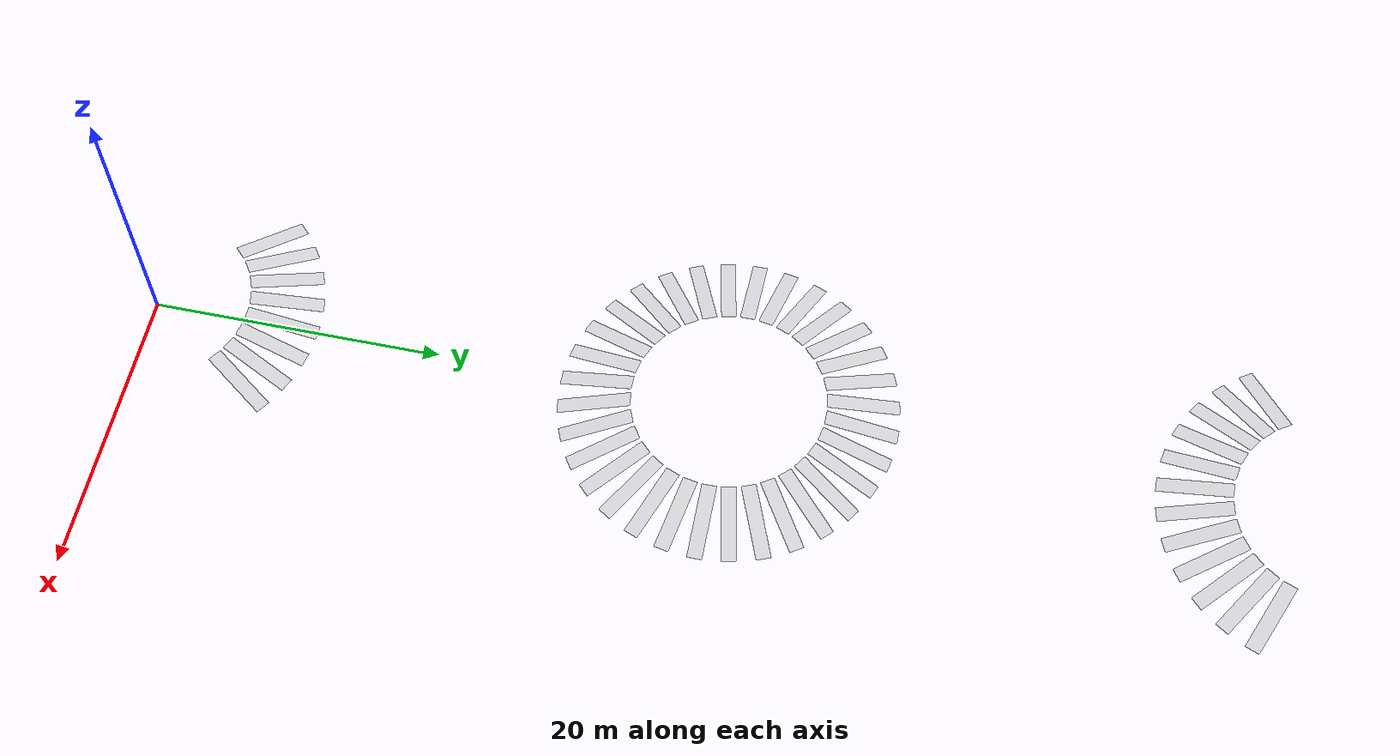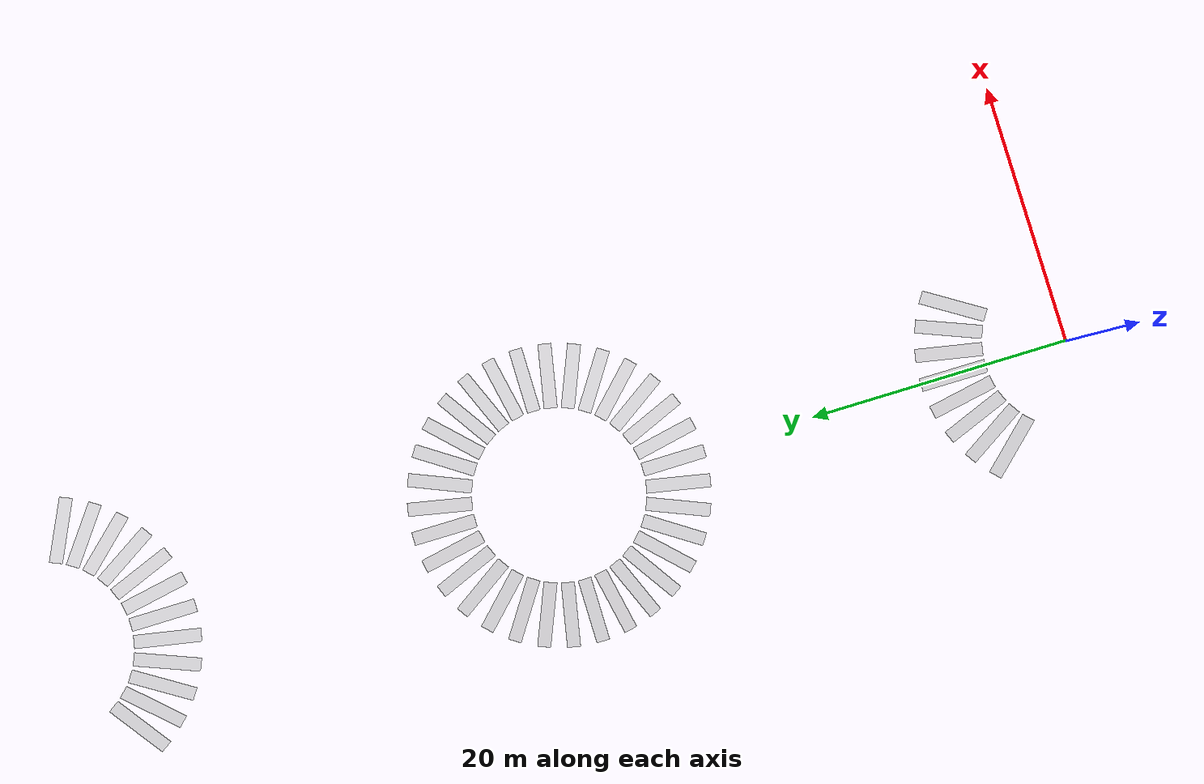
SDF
<sdf version="1.7">
 <world name="friction_pyramid">
  <model name="groundplane">
   <static>1</static>
   <link name="link">
    <collision name="collision">
     <geometry><plane><normal>0 0 1</normal><size>1 1</size></plane></geometry>
    </collision>
   </link>
  </model>
  <model name="boxes_ramp_5">
   <pose relative_to="groundplane">5.0001320971764205 7.483226510722907 0.5 0 0.2 0.9817477042468103</pose>
   <static>1</static>
   <link name="link">
    <collision name="collision">
     <pose relative_to="link">0 0 0 0 0 0</pose>
     <geometry><box><size>5 1 0.02</size></box></geometry>
     <surface>
      <contact><ode><kp>1e+06</kp><kd>1</kd></ode></contact>
      <friction><ode><mu>1</mu><mu2>1</mu2></ode></friction>
     </surface>
    </collision>
    <visual name="visual">
     <geometry><box><size>5 1 0.02</size></box></geometry>
     <material>
      <ambient>.3 .3 .3  0.5</ambient>
      <diffuse>.7 .7 .7  0.5</diffuse>
      <specular>0.01 0.01 0.01 1.000000</specular>
     </material>
    </visual>
    <gravity>0</gravity>
   </link>
  </model>
  <model name="boxes_ramp_6">
   <pose relative_to="groundplane">3.4441508912858083 8.31491579260158 0.5 0 0.2 1.1780972450961724</pose>
   <static>1</static>
   <link name="link">
    <collision name="collision">
     <pose relative_to="link">0 0 0 0 0 0</pose>
     <geometry><box><size>5 1 0.02</size></box></geometry>
     <surface>
      <contact><ode><kp>1e+06</kp><kd>1</kd></ode></contact>
      <friction><ode><mu>1</mu><mu2>1</mu2></ode></friction>
     </surface>
    </collision>
    <visual name="visual">
     <geometry><box><size>5 1 0.02</size></box></geometry>
     <material>
      <ambient>.3 .3 .3  0.5</ambient>
      <diffuse>.7 .7 .7  0.5</diffuse>
      <specular>0.01 0.01 0.01 1.000000</specular>
     </material>
    </visual>
    <gravity>0</gravity>
   </link>
  </model>
  <model name="boxes_ramp_7">
   <pose relative_to="groundplane">1.755812898145155 8.827067523629074 0.5 0 0.2 1.3744467859455345</pose>
   <static>1</static>
   <link name="link">
    <collision name="collision">
     <pose relative_to="link">0 0 0 0 0 0</pose>
     <geometry><box><size>5 1 0.02</size></box></geometry>
     <surface>
      <contact><ode><kp>1e+06</kp><kd>1</kd></ode></contact>
      <friction><ode><mu>1</mu><mu2>1</mu2></ode></friction>
     </surface>
    </collision>
    <visual name="visual">
     <geometry><box><size>5 1 0.02</size></box></geometry>
     <material>
      <ambient>.3 .3 .3  0.5</ambient>
      <diffuse>.7 .7 .7  0.5</diffuse>
      <specular>0.01 0.01 0.01 1.000000</specular>
     </material>
    </visual>
    <gravity>0</gravity>
   </link>
  </model>
  <model name="boxes_ramp_8">
   <pose relative_to="groundplane">5.51091059616309e-16 9.0 0.5 0 0.2 1.5707963267948966</pose>
   <static>1</static>
   <link name="link">
    <collision name="collision">
     <pose relative_to="link">0 0 0 0 0 0</pose>
     <geometry><box><size>5 1 0.02</size></box></geometry>
     <surface>
      <contact><ode><kp>1e+06</kp><kd>1</kd></ode></contact>
      <friction><ode><mu>1</mu><mu2>1</mu2></ode></friction>
     </surface>
    </collision>
    <visual name="visual">
     <geometry><box><size>5 1 0.02</size></box></geometry>
     <material>
      <ambient>.3 .3 .3  0.5</ambient>
      <diffuse>.7 .7 .7  0.5</diffuse>
      <specular>0.01 0.01 0.01 1.000000</specular>
     </material>
    </visual>
    <gravity>0</gravity>
   </link>
  </model>
  <model name="boxes_ramp_9">
   <pose relative_to="groundplane">-1.7558128981451537 8.827067523629074 0.5 0 0.2 1.7671458676442586</pose>
   <static>1</static>
   <link name="link">
    <collision name="collision">
     <pose relative_to="link">0 0 0 0 0 0</pose>
     <geometry><box><size>5 1 0.02</size></box></geometry>
     <surface>
      <contact><ode><kp>1e+06</kp><kd>1</kd></ode></contact>
      <friction><ode><mu>1</mu><mu2>1</mu2></ode></friction>
     </surface>
    </collision>
    <visual name="visual">
     <geometry><box><size>5 1 0.02</size></box></geometry>
     <material>
      <ambient>.3 .3 .3  0.5</ambient>
      <diffuse>.7 .7 .7  0.5</diffuse>
      <specular>0.01 0.01 0.01 1.000000</specular>
     </material>
    </visual>
    <gravity>0</gravity>
   </link>
  </model>
  <model name="boxes_ramp_10">
   <pose relative_to="groundplane">-3.4441508912858074 8.31491579260158 0.5 0 0.2 1.9634954084936207</pose>
   <static>1</static>
   <link name="link">
    <collision name="collision">
     <pose relative_to="link">0 0 0 0 0 0</pose>
     <geometry><box><size>5 1 0.02</size></box></geometry>
     <surface>
      <contact><ode><kp>1e+06</kp><kd>1</kd></ode></contact>
      <friction><ode><mu>1</mu><mu2>1</mu2></ode></friction>
     </surface>
    </collision>
    <visual name="visual">
     <geometry><box><size>5 1 0.02</size></box></geometry>
     <material>
      <ambient>.3 .3 .3  0.5</ambient>
      <diffuse>.7 .7 .7  0.5</diffuse>
      <specular>0.01 0.01 0.01 1.000000</specular>
     </material>
    </visual>
    <gravity>0</gravity>
   </link>
  </model>
  <model name="boxes_ramp_11">
   <pose relative_to="groundplane">-5.000132097176418 7.4832265107229095 0.5 0 0.2 2.1598449493429825</pose>
   <static>1</static>
   <link name="link">
    <collision name="collision">
     <pose relative_to="link">0 0 0 0 0 0</pose>
     <geometry><box><size>5 1 0.02</size></box></geometry>
     <surface>
      <contact><ode><kp>1e+06</kp><kd>1</kd></ode></contact>
      <friction><ode><mu>1</mu><mu2>1</mu2></ode></friction>
     </surface>
    </collision>
    <visual name="visual">
     <geometry><box><size>5 1 0.02</size></box></geometry>
     <material>
      <ambient>.3 .3 .3  0.5</ambient>
      <diffuse>.7 .7 .7  0.5</diffuse>
      <specular>0.01 0.01 0.01 1.000000</specular>
     </material>
    </visual>
    <gravity>0</gravity>
   </link>
  </model>
  <model name="boxes_ramp_12">
   <pose relative_to="groundplane">-6.363961030678928 6.3639610306789285 0.5 0 0.2 2.356194490192345</pose>
   <static>1</static>
   <link name="link">
    <collision name="collision">
     <pose relative_to="link">0 0 0 0 0 0</pose>
     <geometry><box><size>5 1 0.02</size></box></geometry>
     <surface>
      <contact><ode><kp>1e+06</kp><kd>1</kd></ode></contact>
      <friction><ode><mu>1</mu><mu2>1</mu2></ode></friction>
     </surface>
    </collision>
    <visual name="visual">
     <geometry><box><size>5 1 0.02</size></box></geometry>
     <material>
      <ambient>.3 .3 .3  0.5</ambient>
      <diffuse>.7 .7 .7  0.5</diffuse>
      <specular>0.01 0.01 0.01 1.000000</specular>
     </material>
    </visual>
    <gravity>0</gravity>
   </link>
  </model>
  <model name="boxes_mu_ramp_0">
   <pose relative_to="groundplane">9.0 40.0 0.5 0 0.2 0.0</pose>
   <static>1</static>
   <link name="link">
    <collision name="collision">
     <pose relative_to="link">0 0 0 0 0 0</pose>
     <geometry><box><size>5 1 0.02</size></box></geometry>
     <surface>
      <contact><ode><kp>1e+06</kp><kd>1</kd></ode></contact>
      <friction><ode><mu>1</mu><mu2>1</mu2></ode></friction>
     </surface>
    </collision>
    <visual name="visual">
     <geometry><box><size>5 1 0.02</size></box></geometry>
     <material>
      <ambient>.3 .3 .3  0.5</ambient>
      <diffuse>.7 .7 .7  0.5</diffuse>
      <specular>0.01 0.01 0.01 1.000000</specular>
     </material>
    </visual>
    <gravity>0</gravity>
   </link>
  </model>
  <model name="boxes_mu_ramp_1">
   <pose relative_to="groundplane">8.827067523629074 41.75581289814515 0.5 0 0.2 0.19634954084936207</pose>
   <static>1</static>
   <link name="link">
    <collision name="collision">
     <pose relative_to="link">0 0 0 0 0 0</pose>
     <geometry><box><size>5 1 0.02</size></box></geometry>
     <surface>
      <contact><ode><kp>1e+06</kp><kd>1</kd></ode></contact>
      <friction><ode><mu>1</mu><mu2>1</mu2></ode></friction>
     </surface>
    </collision>
    <visual name="visual">
     <geometry><box><size>5 1 0.02</size></box></geometry>
     <material>
      <ambient>.3 .3 .3  0.5</ambient>
      <diffuse>.7 .7 .7  0.5</diffuse>
      <specular>0.01 0.01 0.01 1.000000</specular>
     </material>
    </visual>
    <gravity>0</gravity>
   </link>
  </model>
  <model name="boxes_mu_ramp_2">
   <pose relative_to="groundplane">8.31491579260158 43.44415089128581 0.5 0 0.2 0.39269908169872414</pose>
   <static>1</static>
   <link name="link">
    <collision name="collision">
     <pose relative_to="link">0 0 0 0 0 0</pose>
     <geometry><box><size>5 1 0.02</size></box></geometry>
     <surface>
      <contact><ode><kp>1e+06</kp><kd>1</kd></ode></contact>
      <friction><ode><mu>1</mu><mu2>1</mu2></ode></friction>
     </surface>
    </collision>
    <visual name="visual">
     <geometry><box><size>5 1 0.02</size></box></geometry>
     <material>
      <ambient>.3 .3 .3  0.5</ambient>
      <diffuse>.7 .7 .7  0.5</diffuse>
      <specular>0.01 0.01 0.01 1.000000</specular>
     </material>
    </visual>
    <gravity>0</gravity>
   </link>
  </model>
  <model name="boxes_mu_ramp_3">
   <pose relative_to="groundplane">7.483226510722907 45.00013209717642 0.5 0 0.2 0.5890486225480862</pose>
   <static>1</static>
   <link name="link">
    <collision name="collision">
     <pose relative_to="link">0 0 0 0 0 0</pose>
     <geometry><box><size>5 1 0.02</size></box></geometry>
     <surface>
      <contact><ode><kp>1e+06</kp><kd>1</kd></ode></contact>
      <friction><ode><mu>1</mu><mu2>1</mu2></ode></friction>
     </surface>
    </collision>
    <visual name="visual">
     <geometry><box><size>5 1 0.02</size></box></geometry>
     <material>
      <ambient>.3 .3 .3  0.5</ambient>
      <diffuse>.7 .7 .7  0.5</diffuse>
      <specular>0.01 0.01 0.01 1.000000</specular>
     </material>
    </visual>
    <gravity>0</gravity>
   </link>
  </model>
  <model name="boxes_mu_ramp_4">
   <pose relative_to="groundplane">6.3639610306789285 46.36396103067893 0.5 0 0.2 0.7853981633974483</pose>
   <static>1</static>
   <link name="link">
    <collision name="collision">
     <pose relative_to="link">0 0 0 0 0 0</pose>
     <geometry><box><size>5 1 0.02</size></box></geometry>
     <surface>
      <contact><ode><kp>1e+06</kp><kd>1</kd></ode></contact>
      <friction><ode><mu>1</mu><mu2>1</mu2></ode></friction>
     </surface>
    </collision>
    <visual name="visual">
     <geometry><box><size>5 1 0.02</size></box></geometry>
     <material>
      <ambient>.3 .3 .3  0.5</ambient>
      <diffuse>.7 .7 .7  0.5</diffuse>
      <specular>0.01 0.01 0.01 1.000000</specular>
     </material>
    </visual>
    <gravity>0</gravity>
   </link>
  </model>
  <model name="boxes_mu_ramp_5">
   <pose relative_to="groundplane">5.0001320971764205 47.48322651072291 0.5 0 0.2 0.9817477042468103</pose>
   <static>1</static>
   <link name="link">
    <collision name="collision">
     <pose relative_to="link">0 0 0 0 0 0</pose>
     <geometry><box><size>5 1 0.02</size></box></geometry>
     <surface>
      <contact><ode><kp>1e+06</kp><kd>1</kd></ode></contact>
      <friction><ode><mu>1</mu><mu2>1</mu2></ode></friction>
     </surface>
    </collision>
    <visual name="visual">
     <geometry><box><size>5 1 0.02</size></box></geometry>
     <material>
      <ambient>.3 .3 .3  0.5</ambient>
      <diffuse>.7 .7 .7  0.5</diffuse>
      <specular>0.01 0.01 0.01 1.000000</specular>
     </material>
    </visual>
    <gravity>0</gravity>
   </link>
  </model>
  <model name="boxes_mu_ramp_6">
   <pose relative_to="groundplane">3.4441508912858083 48.31491579260158 0.5 0 0.2 1.1780972450961724</pose>
   <static>1</static>
   <link name="link">
    <collision name="collision">
     <pose relative_to="link">0 0 0 0 0 0</pose>
     <geometry><box><size>5 1 0.02</size></box></geometry>
     <surface>
      <contact><ode><kp>1e+06</kp><kd>1</kd></ode></contact>
      <friction><ode><mu>1</mu><mu2>1</mu2></ode></friction>
     </surface>
    </collision>
    <visual name="visual">
     <geometry><box><size>5 1 0.02</size></box></geometry>
     <material>
      <ambient>.3 .3 .3  0.5</ambient>
      <diffuse>.7 .7 .7  0.5</diffuse>
      <specular>0.01 0.01 0.01 1.000000</specular>
     </material>
    </visual>
    <gravity>0</gravity>
   </link>
  </model>
  <model name="boxes_mu_ramp_7">
   <pose relative_to="groundplane">1.755812898145155 48.827067523629076 0.5 0 0.2 1.3744467859455345</pose>
   <static>1</static>
   <link name="link">
    <collision name="collision">
     <pose relative_to="link">0 0 0 0 0 0</pose>
     <geometry><box><size>5 1 0.02</size></box></geometry>
     <surface>
      <contact><ode><kp>1e+06</kp><kd>1</kd></ode></contact>
      <friction><ode><mu>1</mu><mu2>1</mu2></ode></friction>
     </surface>
    </collision>
    <visual name="visual">
     <geometry><box><size>5 1 0.02</size></box></geometry>
     <material>
      <ambient>.3 .3 .3  0.5</ambient>
      <diffuse>.7 .7 .7  0.5</diffuse>
      <specular>0.01 0.01 0.01 1.000000</specular>
     </material>
    </visual>
    <gravity>0</gravity>
   </link>
  </model>
  <model name="boxes_mu_ramp_8">
   <pose relative_to="groundplane">5.51091059616309e-16 49.0 0.5 0 0.2 1.5707963267948966</pose>
   <static>1</static>
   <link name="link">
    <collision name="collision">
     <pose relative_to="link">0 0 0 0 0 0</pose>
     <geometry><box><size>5 1 0.02</size></box></geometry>
     <surface>
      <contact><ode><kp>1e+06</kp><kd>1</kd></ode></contact>
      <friction><ode><mu>1</mu><mu2>1</mu2></ode></friction>
     </surface>
    </collision>
    <visual name="visual">
     <geometry><box><size>5 1 0.02</size></box></geometry>
     <material>
      <ambient>.3 .3 .3  0.5</ambient>
      <diffuse>.7 .7 .7  0.5</diffuse>
      <specular>0.01 0.01 0.01 1.000000</specular>
     </material>
    </visual>
    <gravity>0</gravity>
   </link>
  </model>
  <model name="boxes_mu_ramp_9">
   <pose relative_to="groundplane">-1.7558128981451537 48.827067523629076 0.5 0 0.2 1.7671458676442586</pose>
   <static>1</static>
   <link name="link">
    <collision name="collision">
     <pose relative_to="link">0 0 0 0 0 0</pose>
     <geometry><box><size>5 1 0.02</size></box></geometry>
     <surface>
      <contact><ode><kp>1e+06</kp><kd>1</kd></ode></contact>
      <friction><ode><mu>1</mu><mu2>1</mu2></ode></friction>
     </surface>
    </collision>
    <visual name="visual">
     <geometry><box><size>5 1 0.02</size></box></geometry>
     <material>
      <ambient>.3 .3 .3  0.5</ambient>
      <diffuse>.7 .7 .7  0.5</diffuse>
      <specular>0.01 0.01 0.01 1.000000</specular>
     </material>
    </visual>
    <gravity>0</gravity>
   </link>
  </model>
  <model name="boxes_mu_ramp_10">
   <pose relative_to="groundplane">-3.4441508912858074 48.31491579260158 0.5 0 0.2 1.9634954084936207</pose>
   <static>1</static>
   <link name="link">
    <collision name="collision">
     <pose relative_to="link">0 0 0 0 0 0</pose>
     <geometry><box><size>5 1 0.02</size></box></geometry>
     <surface>
      <contact><ode><kp>1e+06</kp><kd>1</kd></ode></contact>
      <friction><ode><mu>1</mu><mu2>1</mu2></ode></friction>
     </surface>
    </collision>
    <visual name="visual">
     <geometry><box><size>5 1 0.02</size></box></geometry>
     <material>
      <ambient>.3 .3 .3  0.5</ambient>
      <diffuse>.7 .7 .7  0.5</diffuse>
      <specular>0.01 0.01 0.01 1.000000</specular>
     </material>
    </visual>
    <gravity>0</gravity>
   </link>
  </model>
  <model name="boxes_mu_ramp_11">
   <pose relative_to="groundplane">-5.000132097176418 47.48322651072291 0.5 0 0.2 2.1598449493429825</pose>
   <static>1</static>
   <link name="link">
    <collision name="collision">
     <pose relative_to="link">0 0 0 0 0 0</pose>
     <geometry><box><size>5 1 0.02</size></box></geometry>
     <surface>
      <contact><ode><kp>1e+06</kp><kd>1</kd></ode></contact>
      <friction><ode><mu>1</mu><mu2>1</mu2></ode></friction>
     </surface>
    </collision>
    <visual name="visual">
     <geometry><box><size>5 1 0.02</size></box></geometry>
     <material>
      <ambient>.3 .3 .3  0.5</ambient>
      <diffuse>.7 .7 .7  0.5</diffuse>
      <specular>0.01 0.01 0.01 1.000000</specular>
     </material>
    </visual>
    <gravity>0</gravity>
   </link>
  </model>
  <model name="boxes_mu_ramp_12">
   <pose relative_to="groundplane">-6.363961030678928 46.36396103067893 0.5 0 0.2 2.356194490192345</pose>
   <static>1</static>
   <link name="link">
    <collision name="collision">
     <pose relative_to="link">0 0 0 0 0 0</pose>
     <geometry><box><size>5 1 0.02</size></box></geometry>
     <surface>
      <contact><ode><kp>1e+06</kp><kd>1</kd></ode></contact>
      <friction><ode><mu>1</mu><mu2>1</mu2></ode></friction>
     </surface>
    </collision>
    <visual name="visual">
     <geometry><box><size>5 1 0.02</size></box></geometry>
     <material>
      <ambient>.3 .3 .3  0.5</ambient>
      <diffuse>.7 .7 .7  0.5</diffuse>
      <specular>0.01 0.01 0.01 1.000000</specular>
     </material>
    </visual>
    <gravity>0</gravity>
   </link>
  </model>
  <model name="boxes_mu_ramp_13">
   <pose relative_to="groundplane">-7.483226510722908 45.00013209717642 0.5 0 0.2 2.552544031041707</pose>
   <static>1</static>
   <link name="link">
    <collision name="collision">
     <pose relative_to="link">0 0 0 0 0 0</pose>
     <geometry><box><size>5 1 0.02</size></box></geometry>
     <surface>
      <contact><ode><kp>1e+06</kp><kd>1</kd></ode></contact>
      <friction><ode><mu>1</mu><mu2>1</mu2></ode></friction>
     </surface>
    </collision>
    <visual name="visual">
     <geometry><box><size>5 1 0.02</size></box></geometry>
     <material>
      <ambient>.3 .3 .3  0.5</ambient>
      <diffuse>.7 .7 .7  0.5</diffuse>
      <specular>0.01 0.01 0.01 1.000000</specular>
     </material>
    </visual>
    <gravity>0</gravity>
   </link>
  </model>
  <model name="boxes_mu_ramp_14">
   <pose relative_to="groundplane">-8.31491579260158 43.44415089128581 0.5 0 0.2 2.748893571891069</pose>
   <static>1</static>
   <link name="link">
    <collision name="collision">
     <pose relative_to="link">0 0 0 0 0 0</pose>
     <geometry><box><size>5 1 0.02</size></box></geometry>
     <surface>
      <contact><ode><kp>1e+06</kp><kd>1</kd></ode></contact>
      <friction><ode><mu>1</mu><mu2>1</mu2></ode></friction>
     </surface>
    </collision>
    <visual name="visual">
     <geometry><box><size>5 1 0.02</size></box></geometry>
     <material>
      <ambient>.3 .3 .3  0.5</ambient>
      <diffuse>.7 .7 .7  0.5</diffuse>
      <specular>0.01 0.01 0.01 1.000000</specular>
     </material>
    </visual>
    <gravity>0</gravity>
   </link>
  </model>
  <model name="boxes_mu_ramp_15">
   <pose relative_to="groundplane">-8.827067523629074 41.75581289814516 0.5 0 0.2 2.945243112740431</pose>
   <static>1</static>
   <link name="link">
    <collision name="collision">
     <pose relative_to="link">0 0 0 0 0 0</pose>
     <geometry><box><size>5 1 0.02</size></box></geometry>
     <surface>
      <contact><ode><kp>1e+06</kp><kd>1</kd></ode></contact>
      <friction><ode><mu>1</mu><mu2>1</mu2></ode></friction>
     </surface>
    </collision>
    <visual name="visual">
     <geometry><box><size>5 1 0.02</size></box></geometry>
     <material>
      <ambient>.3 .3 .3  0.5</ambient>
      <diffuse>.7 .7 .7  0.5</diffuse>
      <specular>0.01 0.01 0.01 1.000000</specular>
     </material>
    </visual>
    <gravity>0</gravity>
   </link>
  </model>
  <model name="boxes_mu_ramp_16">
   <pose relative_to="groundplane">-9.0 40.0 0.5 0 0.2 3.141592653589793</pose>
   <static>1</static>
   <link name="link">
    <collision name="collision">
     <pose relative_to="link">0 0 0 0 0 0</pose>
     <geometry><box><size>5 1 0.02</size></box></geometry>
     <surface>
      <contact><ode><kp>1e+06</kp><kd>1</kd></ode></contact>
      <friction><ode><mu>1</mu><mu2>1</mu2></ode></friction>
     </surface>
    </collision>
    <visual name="visual">
     <geometry><box><size>5 1 0.02</size></box></geometry>
     <material>
      <ambient>.3 .3 .3  0.5</ambient>
      <diffuse>.7 .7 .7  0.5</diffuse>
      <specular>0.01 0.01 0.01 1.000000</specular>
     </material>
    </visual>
    <gravity>0</gravity>
   </link>
  </model>
  <model name="boxes_mu_ramp_17">
   <pose relative_to="groundplane">-8.827067523629074 38.24418710185485 0.5 0 0.2 3.3379421944391554</pose>
   <static>1</static>
   <link name="link">
    <collision name="collision">
     <pose relative_to="link">0 0 0 0 0 0</pose>
     <geometry><box><size>5 1 0.02</size></box></geometry>
     <surface>
      <contact><ode><kp>1e+06</kp><kd>1</kd></ode></contact>
      <friction><ode><mu>1</mu><mu2>1</mu2></ode></friction>
     </surface>
    </collision>
    <visual name="visual">
     <geometry><box><size>5 1 0.02</size></box></geometry>
     <material>
      <ambient>.3 .3 .3  0.5</ambient>
      <diffuse>.7 .7 .7  0.5</diffuse>
      <specular>0.01 0.01 0.01 1.000000</specular>
     </material>
    </visual>
    <gravity>0</gravity>
   </link>
  </model>
  <model name="boxes_mu_ramp_18">
   <pose relative_to="groundplane">-8.314915792601582 36.55584910871419 0.5 0 0.2 3.5342917352885173</pose>
   <static>1</static>
   <link name="link">
    <collision name="collision">
     <pose relative_to="link">0 0 0 0 0 0</pose>
     <geometry><box><size>5 1 0.02</size></box></geometry>
     <surface>
      <contact><ode><kp>1e+06</kp><kd>1</kd></ode></contact>
      <friction><ode><mu>1</mu><mu2>1</mu2></ode></friction>
     </surface>
    </collision>
    <visual name="visual">
     <geometry><box><size>5 1 0.02</size></box></geometry>
     <material>
      <ambient>.3 .3 .3  0.5</ambient>
      <diffuse>.7 .7 .7  0.5</diffuse>
      <specular>0.01 0.01 0.01 1.000000</specular>
     </material>
    </visual>
    <gravity>0</gravity>
   </link>
  </model>
  <model name="boxes_mu_ramp_19">
   <pose relative_to="groundplane">-7.4832265107229095 34.99986790282358 0.5 0 0.2 3.730641276137879</pose>
   <static>1</static>
   <link name="link">
    <collision name="collision">
     <pose relative_to="link">0 0 0 0 0 0</pose>
     <geometry><box><size>5 1 0.02</size></box></geometry>
     <surface>
      <contact><ode><kp>1e+06</kp><kd>1</kd></ode></contact>
      <friction><ode><mu>1</mu><mu2>1</mu2></ode></friction>
     </surface>
    </collision>
    <visual name="visual">
     <geometry><box><size>5 1 0.02</size></box></geometry>
     <material>
      <ambient>.3 .3 .3  0.5</ambient>
      <diffuse>.7 .7 .7  0.5</diffuse>
      <specular>0.01 0.01 0.01 1.000000</specular>
     </material>
    </visual>
    <gravity>0</gravity>
   </link>
  </model>
  <model name="boxes_mu_ramp_20">
   <pose relative_to="groundplane">-6.363961030678929 33.63603896932107 0.5 0 0.2 3.9269908169872414</pose>
   <static>1</static>
   <link name="link">
    <collision name="collision">
     <pose relative_to="link">0 0 0 0 0 0</pose>
     <geometry><box><size>5 1 0.02</size></box></geometry>
     <surface>
      <contact><ode><kp>1e+06</kp><kd>1</kd></ode></contact>
      <friction><ode><mu>1</mu><mu2>1</mu2></ode></friction>
     </surface>
    </collision>
    <visual name="visual">
     <geometry><box><size>5 1 0.02</size></box></geometry>
     <material>
      <ambient>.3 .3 .3  0.5</ambient>
      <diffuse>.7 .7 .7  0.5</diffuse>
      <specular>0.01 0.01 0.01 1.000000</specular>
     </material>
    </visual>
    <gravity>0</gravity>
   </link>
  </model>
  <model name="boxes_mu_ramp_21">
   <pose relative_to="groundplane">-5.00013209717642 32.51677348927709 0.5 0 0.2 4.123340357836604</pose>
   <static>1</static>
   <link name="link">
    <collision name="collision">
     <pose relative_to="link">0 0 0 0 0 0</pose>
     <geometry><box><size>5 1 0.02</size></box></geometry>
     <surface>
      <contact><ode><kp>1e+06</kp><kd>1</kd></ode></contact>
      <friction><ode><mu>1</mu><mu2>1</mu2></ode></friction>
     </surface>
    </collision>
    <visual name="visual">
     <geometry><box><size>5 1 0.02</size></box></geometry>
     <material>
      <ambient>.3 .3 .3  0.5</ambient>
      <diffuse>.7 .7 .7  0.5</diffuse>
      <specular>0.01 0.01 0.01 1.000000</specular>
     </material>
    </visual>
    <gravity>0</gravity>
   </link>
  </model>
  <model name="boxes_mu_ramp_22">
   <pose relative_to="groundplane">-3.444150891285813 31.685084207398422 0.5 0 0.2 4.319689898685965</pose>
   <static>1</static>
   <link name="link">
    <collision name="collision">
     <pose relative_to="link">0 0 0 0 0 0</pose>
     <geometry><box><size>5 1 0.02</size></box></geometry>
     <surface>
      <contact><ode><kp>1e+06</kp><kd>1</kd></ode></contact>
      <friction><ode><mu>1</mu><mu2>1</mu2></ode></friction>
     </surface>
    </collision>
    <visual name="visual">
     <geometry><box><size>5 1 0.02</size></box></geometry>
     <material>
      <ambient>.3 .3 .3  0.5</ambient>
      <diffuse>.7 .7 .7  0.5</diffuse>
      <specular>0.01 0.01 0.01 1.000000</specular>
     </material>
    </visual>
    <gravity>0</gravity>
   </link>
  </model>
  <model name="boxes_mu_ramp_23">
   <pose relative_to="groundplane">-1.755812898145158 31.172932476370928 0.5 0 0.2 4.516039439535327</pose>
   <static>1</static>
   <link name="link">
    <collision name="collision">
     <pose relative_to="link">0 0 0 0 0 0</pose>
     <geometry><box><size>5 1 0.02</size></box></geometry>
     <surface>
      <contact><ode><kp>1e+06</kp><kd>1</kd></ode></contact>
      <friction><ode><mu>1</mu><mu2>1</mu2></ode></friction>
     </surface>
    </collision>
    <visual name="visual">
     <geometry><box><size>5 1 0.02</size></box></geometry>
     <material>
      <ambient>.3 .3 .3  0.5</ambient>
      <diffuse>.7 .7 .7  0.5</diffuse>
      <specular>0.01 0.01 0.01 1.000000</specular>
     </material>
    </visual>
    <gravity>0</gravity>
   </link>
  </model>
  <model name="boxes_mu_ramp_24">
   <pose relative_to="groundplane">-1.6532731788489267e-15 31.0 0.5 0 0.2 4.71238898038469</pose>
   <static>1</static>
   <link name="link">
    <collision name="collision">
     <pose relative_to="link">0 0 0 0 0 0</pose>
     <geometry><box><size>5 1 0.02</size></box></geometry>
     <surface>
      <contact><ode><kp>1e+06</kp><kd>1</kd></ode></contact>
      <friction><ode><mu>1</mu><mu2>1</mu2></ode></friction>
     </surface>
    </collision>
    <visual name="visual">
     <geometry><box><size>5 1 0.02</size></box></geometry>
     <material>
      <ambient>.3 .3 .3  0.5</ambient>
      <diffuse>.7 .7 .7  0.5</diffuse>
      <specular>0.01 0.01 0.01 1.000000</specular>
     </material>
    </visual>
    <gravity>0</gravity>
   </link>
  </model>
  <model name="boxes_mu_ramp_25">
   <pose relative_to="groundplane">1.7558128981451548 31.172932476370924 0.5 0 0.2 4.908738521234052</pose>
   <static>1</static>
   <link name="link">
    <collision name="collision">
     <pose relative_to="link">0 0 0 0 0 0</pose>
     <geometry><box><size>5 1 0.02</size></box></geometry>
     <surface>
      <contact><ode><kp>1e+06</kp><kd>1</kd></ode></contact>
      <friction><ode><mu>1</mu><mu2>1</mu2></ode></friction>
     </surface>
    </collision>
    <visual name="visual">
     <geometry><box><size>5 1 0.02</size></box></geometry>
     <material>
      <ambient>.3 .3 .3  0.5</ambient>
      <diffuse>.7 .7 .7  0.5</diffuse>
      <specular>0.01 0.01 0.01 1.000000</specular>
     </material>
    </visual>
    <gravity>0</gravity>
   </link>
  </model>
  <model name="boxes_mu_ramp_26">
   <pose relative_to="groundplane">3.44415089128581 31.68508420739842 0.5 0 0.2 5.105088062083414</pose>
   <static>1</static>
   <link name="link">
    <collision name="collision">
     <pose relative_to="link">0 0 0 0 0 0</pose>
     <geometry><box><size>5 1 0.02</size></box></geometry>
     <surface>
      <contact><ode><kp>1e+06</kp><kd>1</kd></ode></contact>
      <friction><ode><mu>1</mu><mu2>1</mu2></ode></friction>
     </surface>
    </collision>
    <visual name="visual">
     <geometry><box><size>5 1 0.02</size></box></geometry>
     <material>
      <ambient>.3 .3 .3  0.5</ambient>
      <diffuse>.7 .7 .7  0.5</diffuse>
      <specular>0.01 0.01 0.01 1.000000</specular>
     </material>
    </visual>
    <gravity>0</gravity>
   </link>
  </model>
  <model name="boxes_mu_ramp_27">
   <pose relative_to="groundplane">5.000132097176417 32.51677348927709 0.5 0 0.2 5.301437602932776</pose>
   <static>1</static>
   <link name="link">
    <collision name="collision">
     <pose relative_to="link">0 0 0 0 0 0</pose>
     <geometry><box><size>5 1 0.02</size></box></geometry>
     <surface>
      <contact><ode><kp>1e+06</kp><kd>1</kd></ode></contact>
      <friction><ode><mu>1</mu><mu2>1</mu2></ode></friction>
     </surface>
    </collision>
    <visual name="visual">
     <geometry><box><size>5 1 0.02</size></box></geometry>
     <material>
      <ambient>.3 .3 .3  0.5</ambient>
      <diffuse>.7 .7 .7  0.5</diffuse>
      <specular>0.01 0.01 0.01 1.000000</specular>
     </material>
    </visual>
    <gravity>0</gravity>
   </link>
  </model>
  <model name="boxes_mu_ramp_28">
   <pose relative_to="groundplane">6.363961030678926 33.63603896932107 0.5 0 0.2 5.497787143782138</pose>
   <static>1</static>
   <link name="link">
    <collision name="collision">
     <pose relative_to="link">0 0 0 0 0 0</pose>
     <geometry><box><size>5 1 0.02</size></box></geometry>
     <surface>
      <contact><ode><kp>1e+06</kp><kd>1</kd></ode></contact>
      <friction><ode><mu>1</mu><mu2>1</mu2></ode></friction>
     </surface>
    </collision>
    <visual name="visual">
     <geometry><box><size>5 1 0.02</size></box></geometry>
     <material>
      <ambient>.3 .3 .3  0.5</ambient>
      <diffuse>.7 .7 .7  0.5</diffuse>
      <specular>0.01 0.01 0.01 1.000000</specular>
     </material>
    </visual>
    <gravity>0</gravity>
   </link>
  </model>
  <model name="boxes_mu_ramp_29">
   <pose relative_to="groundplane">7.483226510722907 34.99986790282358 0.5 0 0.2 5.6941366846315</pose>
   <static>1</static>
   <link name="link">
    <collision name="collision">
     <pose relative_to="link">0 0 0 0 0 0</pose>
     <geometry><box><size>5 1 0.02</size></box></geometry>
     <surface>
      <contact><ode><kp>1e+06</kp><kd>1</kd></ode></contact>
      <friction><ode><mu>1</mu><mu2>1</mu2></ode></friction>
     </surface>
    </collision>
    <visual name="visual">
     <geometry><box><size>5 1 0.02</size></box></geometry>
     <material>
      <ambient>.3 .3 .3  0.5</ambient>
      <diffuse>.7 .7 .7  0.5</diffuse>
      <specular>0.01 0.01 0.01 1.000000</specular>
     </material>
    </visual>
    <gravity>0</gravity>
   </link>
  </model>
  <model name="boxes_mu_ramp_30">
   <pose relative_to="groundplane">8.314915792601578 36.555849108714185 0.5 0 0.2 5.890486225480862</pose>
   <static>1</static>
   <link name="link">
    <collision name="collision">
     <pose relative_to="link">0 0 0 0 0 0</pose>
     <geometry><box><size>5 1 0.02</size></box></geometry>
     <surface>
      <contact><ode><kp>1e+06</kp><kd>1</kd></ode></contact>
      <friction><ode><mu>1</mu><mu2>1</mu2></ode></friction>
     </surface>
    </collision>
    <visual name="visual">
     <geometry><box><size>5 1 0.02</size></box></geometry>
     <material>
      <ambient>.3 .3 .3  0.5</ambient>
      <diffuse>.7 .7 .7  0.5</diffuse>
      <specular>0.01 0.01 0.01 1.000000</specular>
     </material>
    </visual>
    <gravity>0</gravity>
   </link>
  </model>
  <model name="boxes_mu_ramp_31">
   <pose relative_to="groundplane">8.827067523629072 38.24418710185484 0.5 0 0.2 6.086835766330224</pose>
   <static>1</static>
   <link name="link">
    <collision name="collision">
     <pose relative_to="link">0 0 0 0 0 0</pose>
     <geometry><box><size>5 1 0.02</size></box></geometry>
     <surface>
      <contact><ode><kp>1e+06</kp><kd>1</kd></ode></contact>
      <friction><ode><mu>1</mu><mu2>1</mu2></ode></friction>
     </surface>
    </collision>
    <visual name="visual">
     <geometry><box><size>5 1 0.02</size></box></geometry>
     <material>
      <ambient>.3 .3 .3  0.5</ambient>
      <diffuse>.7 .7 .7  0.5</diffuse>
      <specular>0.01 0.01 0.01 1.000000</specular>
     </material>
    </visual>
    <gravity>0</gravity>
   </link>
  </model>
  <model name="boxes_mu2_ramp_19">
   <pose relative_to="groundplane">-7.4832265107229095 74.99986790282358 0.5 0 0.2 3.730641276137879</pose>
   <static>1</static>
   <link name="link">
    <collision name="collision">
     <pose relative_to="link">0 0 0 0 0 0</pose>
     <geometry><box><size>5 1 0.02</size></box></geometry>
     <surface>
      <contact><ode><kp>1e+06</kp><kd>1</kd></ode></contact>
      <friction><ode><mu>1</mu><mu2>1</mu2></ode></friction>
     </surface>
    </collision>
    <visual name="visual">
     <geometry><box><size>5 1 0.02</size></box></geometry>
     <material>
      <ambient>.3 .3 .3  0.5</ambient>
      <diffuse>.7 .7 .7  0.5</diffuse>
      <specular>0.01 0.01 0.01 1.000000</specular>
     </material>
    </visual>
    <gravity>0</gravity>
   </link>
  </model>
  <model name="boxes_mu2_ramp_20">
   <pose relative_to="groundplane">-6.363961030678929 73.63603896932108 0.5 0 0.2 3.9269908169872414</pose>
   <static>1</static>
   <link name="link">
    <collision name="collision">
     <pose relative_to="link">0 0 0 0 0 0</pose>
     <geometry><box><size>5 1 0.02</size></box></geometry>
     <surface>
      <contact><ode><kp>1e+06</kp><kd>1</kd></ode></contact>
      <friction><ode><mu>1</mu><mu2>1</mu2></ode></friction>
     </surface>
    </collision>
    <visual name="visual">
     <geometry><box><size>5 1 0.02</size></box></geometry>
     <material>
      <ambient>.3 .3 .3  0.5</ambient>
      <diffuse>.7 .7 .7  0.5</diffuse>
      <specular>0.01 0.01 0.01 1.000000</specular>
     </material>
    </visual>
    <gravity>0</gravity>
   </link>
  </model>
  <model name="boxes_mu2_ramp_21">
   <pose relative_to="groundplane">-5.00013209717642 72.5167734892771 0.5 0 0.2 4.123340357836604</pose>
   <static>1</static>
   <link name="link">
    <collision name="collision">
     <pose relative_to="link">0 0 0 0 0 0</pose>
     <geometry><box><size>5 1 0.02</size></box></geometry>
     <surface>
      <contact><ode><kp>1e+06</kp><kd>1</kd></ode></contact>
      <friction><ode><mu>1</mu><mu2>1</mu2></ode></friction>
     </surface>
    </collision>
    <visual name="visual">
     <geometry><box><size>5 1 0.02</size></box></geometry>
     <material>
      <ambient>.3 .3 .3  0.5</ambient>
      <diffuse>.7 .7 .7  0.5</diffuse>
      <specular>0.01 0.01 0.01 1.000000</specular>
     </material>
    </visual>
    <gravity>0</gravity>
   </link>
  </model>
  <model name="boxes_mu2_ramp_22">
   <pose relative_to="groundplane">-3.444150891285813 71.68508420739842 0.5 0 0.2 4.319689898685965</pose>
   <static>1</static>
   <link name="link">
    <collision name="collision">
     <pose relative_to="link">0 0 0 0 0 0</pose>
     <geometry><box><size>5 1 0.02</size></box></geometry>
     <surface>
      <contact><ode><kp>1e+06</kp><kd>1</kd></ode></contact>
      <friction><ode><mu>1</mu><mu2>1</mu2></ode></friction>
     </surface>
    </collision>
    <visual name="visual">
     <geometry><box><size>5 1 0.02</size></box></geometry>
     <material>
      <ambient>.3 .3 .3  0.5</ambient>
      <diffuse>.7 .7 .7  0.5</diffuse>
      <specular>0.01 0.01 0.01 1.000000</specular>
     </material>
    </visual>
    <gravity>0</gravity>
   </link>
  </model>
  <model name="boxes_mu2_ramp_23">
   <pose relative_to="groundplane">-1.755812898145158 71.17293247637093 0.5 0 0.2 4.516039439535327</pose>
   <static>1</static>
   <link name="link">
    <collision name="collision">
     <pose relative_to="link">0 0 0 0 0 0</pose>
     <geometry><box><size>5 1 0.02</size></box></geometry>
     <surface>
      <contact><ode><kp>1e+06</kp><kd>1</kd></ode></contact>
      <friction><ode><mu>1</mu><mu2>1</mu2></ode></friction>
     </surface>
    </collision>
    <visual name="visual">
     <geometry><box><size>5 1 0.02</size></box></geometry>
     <material>
      <ambient>.3 .3 .3  0.5</ambient>
      <diffuse>.7 .7 .7  0.5</diffuse>
      <specular>0.01 0.01 0.01 1.000000</specular>
     </material>
    </visual>
    <gravity>0</gravity>
   </link>
  </model>
  <model name="boxes_mu2_ramp_24">
   <pose relative_to="groundplane">-1.6532731788489267e-15 71.0 0.5 0 0.2 4.71238898038469</pose>
   <static>1</static>
   <link name="link">
    <collision name="collision">
     <pose relative_to="link">0 0 0 0 0 0</pose>
     <geometry><box><size>5 1 0.02</size></box></geometry>
     <surface>
      <contact><ode><kp>1e+06</kp><kd>1</kd></ode></contact>
      <friction><ode><mu>1</mu><mu2>1</mu2></ode></friction>
     </surface>
    </collision>
    <visual name="visual">
     <geometry><box><size>5 1 0.02</size></box></geometry>
     <material>
      <ambient>.3 .3 .3  0.5</ambient>
      <diffuse>.7 .7 .7  0.5</diffuse>
      <specular>0.01 0.01 0.01 1.000000</specular>
     </material>
    </visual>
    <gravity>0</gravity>
   </link>
  </model>
  <model name="boxes_mu2_ramp_25">
   <pose relative_to="groundplane">1.7558128981451548 71.17293247637093 0.5 0 0.2 4.908738521234052</pose>
   <static>1</static>
   <link name="link">
    <collision name="collision">
     <pose relative_to="link">0 0 0 0 0 0</pose>
     <geometry><box><size>5 1 0.02</size></box></geometry>
     <surface>
      <contact><ode><kp>1e+06</kp><kd>1</kd></ode></contact>
      <friction><ode><mu>1</mu><mu2>1</mu2></ode></friction>
     </surface>
    </collision>
    <visual name="visual">
     <geometry><box><size>5 1 0.02</size></box></geometry>
     <material>
      <ambient>.3 .3 .3  0.5</ambient>
      <diffuse>.7 .7 .7  0.5</diffuse>
      <specular>0.01 0.01 0.01 1.000000</specular>
     </material>
    </visual>
    <gravity>0</gravity>
   </link>
  </model>
  <model name="boxes_mu2_ramp_26">
   <pose relative_to="groundplane">3.44415089128581 71.68508420739842 0.5 0 0.2 5.105088062083414</pose>
   <static>1</static>
   <link name="link">
    <collision name="collision">
     <pose relative_to="link">0 0 0 0 0 0</pose>
     <geometry><box><size>5 1 0.02</size></box></geometry>
     <surface>
      <contact><ode><kp>1e+06</kp><kd>1</kd></ode></contact>
      <friction><ode><mu>1</mu><mu2>1</mu2></ode></friction>
     </surface>
    </collision>
    <visual name="visual">
     <geometry><box><size>5 1 0.02</size></box></geometry>
     <material>
      <ambient>.3 .3 .3  0.5</ambient>
      <diffuse>.7 .7 .7  0.5</diffuse>
      <specular>0.01 0.01 0.01 1.000000</specular>
     </material>
    </visual>
    <gravity>0</gravity>
   </link>
  </model>
  <model name="boxes_mu2_ramp_27">
   <pose relative_to="groundplane">5.000132097176417 72.51677348927709 0.5 0 0.2 5.301437602932776</pose>
   <static>1</static>
   <link name="link">
    <collision name="collision">
     <pose relative_to="link">0 0 0 0 0 0</pose>
     <geometry><box><size>5 1 0.02</size></box></geometry>
     <surface>
      <contact><ode><kp>1e+06</kp><kd>1</kd></ode></contact>
      <friction><ode><mu>1</mu><mu2>1</mu2></ode></friction>
     </surface>
    </collision>
    <visual name="visual">
     <geometry><box><size>5 1 0.02</size></box></geometry>
     <material>
      <ambient>.3 .3 .3  0.5</ambient>
      <diffuse>.7 .7 .7  0.5</diffuse>
      <specular>0.01 0.01 0.01 1.000000</specular>
     </material>
    </visual>
    <gravity>0</gravity>
   </link>
  </model>
  <model name="boxes_mu2_ramp_28">
   <pose relative_to="groundplane">6.363961030678926 73.63603896932108 0.5 0 0.2 5.497787143782138</pose>
   <static>1</static>
   <link name="link">
    <collision name="collision">
     <pose relative_to="link">0 0 0 0 0 0</pose>
     <geometry><box><size>5 1 0.02</size></box></geometry>
     <surface>
      <contact><ode><kp>1e+06</kp><kd>1</kd></ode></contact>
      <friction><ode><mu>1</mu><mu2>1</mu2></ode></friction>
     </surface>
    </collision>
    <visual name="visual">
     <geometry><box><size>5 1 0.02</size></box></geometry>
     <material>
      <ambient>.3 .3 .3  0.5</ambient>
      <diffuse>.7 .7 .7  0.5</diffuse>
      <specular>0.01 0.01 0.01 1.000000</specular>
     </material>
    </visual>
    <gravity>0</gravity>
   </link>
  </model>
  <model name="boxes_mu2_ramp_29">
   <pose relative_to="groundplane">7.483226510722907 74.99986790282358 0.5 0 0.2 5.6941366846315</pose>
   <static>1</static>
   <link name="link">
    <collision name="collision">
     <pose relative_to="link">0 0 0 0 0 0</pose>
     <geometry><box><size>5 1 0.02</size></box></geometry>
     <surface>
      <contact><ode><kp>1e+06</kp><kd>1</kd></ode></contact>
      <friction><ode><mu>1</mu><mu2>1</mu2></ode></friction>
     </surface>
    </collision>
    <visual name="visual">
     <geometry><box><size>5 1 0.02</size></box></geometry>
     <material>
      <ambient>.3 .3 .3  0.5</ambient>
      <diffuse>.7 .7 .7  0.5</diffuse>
      <specular>0.01 0.01 0.01 1.000000</specular>
     </material>
    </visual>
    <gravity>0</gravity>
   </link>
  </model>
  <model name="boxes_mu2_ramp_30">
   <pose relative_to="groundplane">8.314915792601578 76.55584910871418 0.5 0 0.2 5.890486225480862</pose>
   <static>1</static>
   <link name="link">
    <collision name="collision">
     <pose relative_to="link">0 0 0 0 0 0</pose>
     <geometry><box><size>5 1 0.02</size></box></geometry>
     <surface>
      <contact><ode><kp>1e+06</kp><kd>1</kd></ode></contact>
      <friction><ode><mu>1</mu><mu2>1</mu2></ode></friction>
     </surface>
    </collision>
    <visual name="visual">
     <geometry><box><size>5 1 0.02</size></box></geometry>
     <material>
      <ambient>.3 .3 .3  0.5</ambient>
      <diffuse>.7 .7 .7  0.5</diffuse>
      <specular>0.01 0.01 0.01 1.000000</specular>
     </material>
    </visual>
    <gravity>0</gravity>
   </link>
  </model>
 </world>
</sdf>
